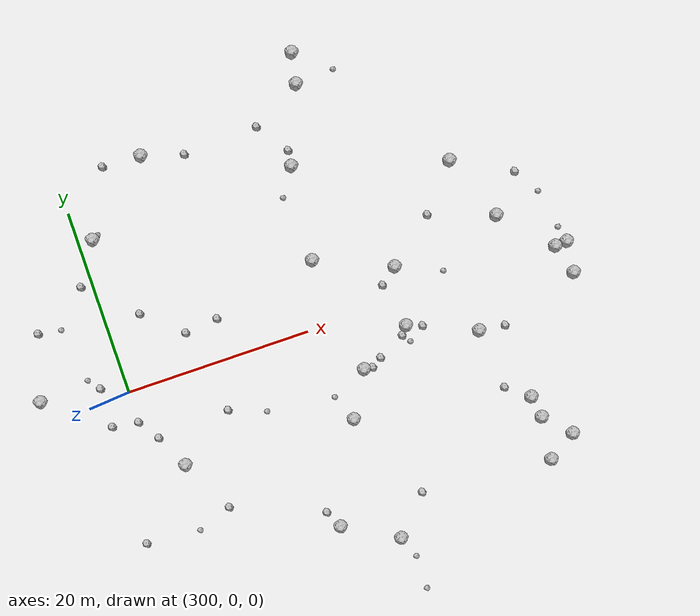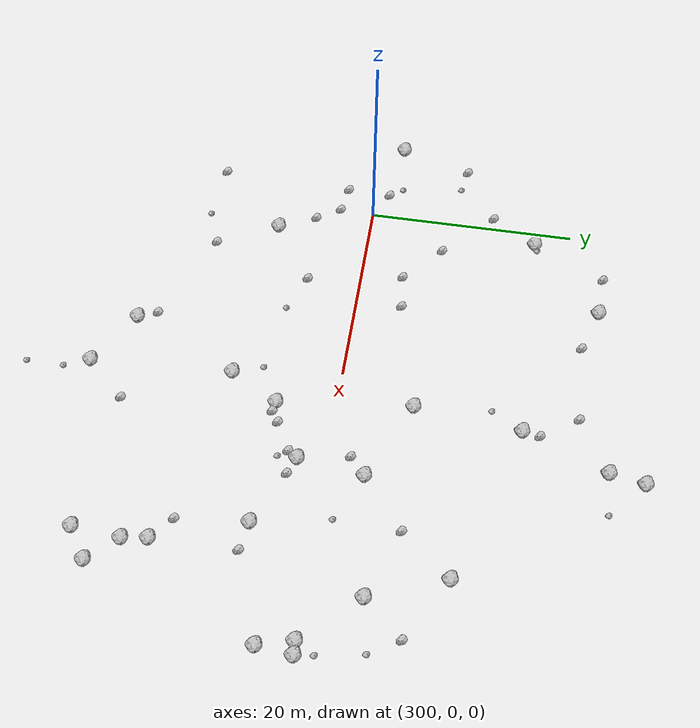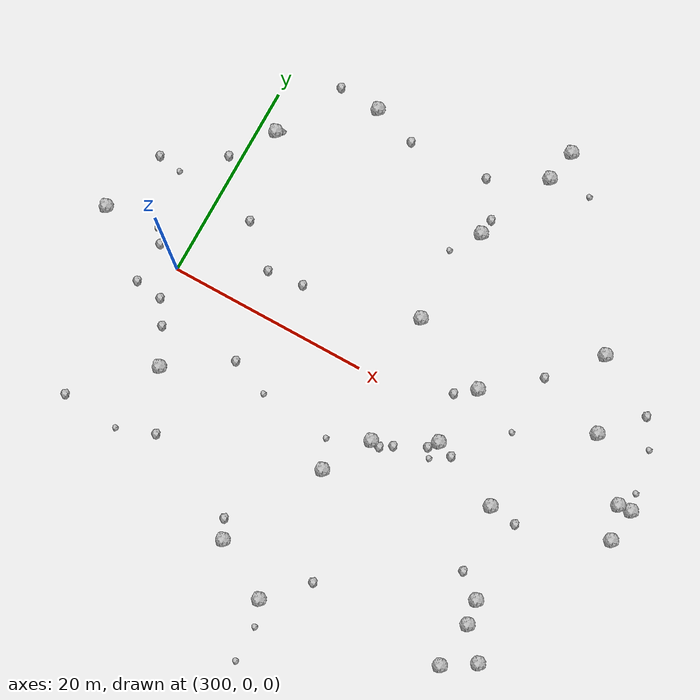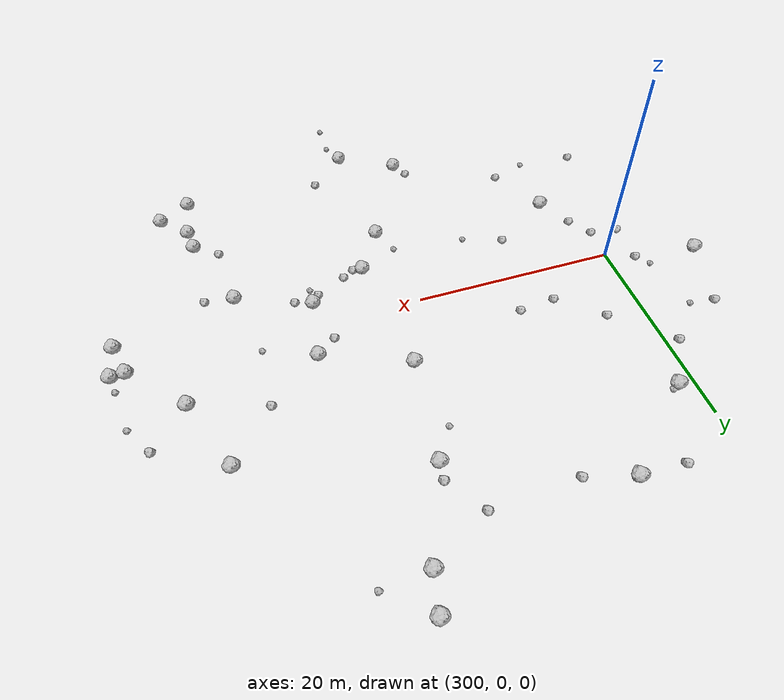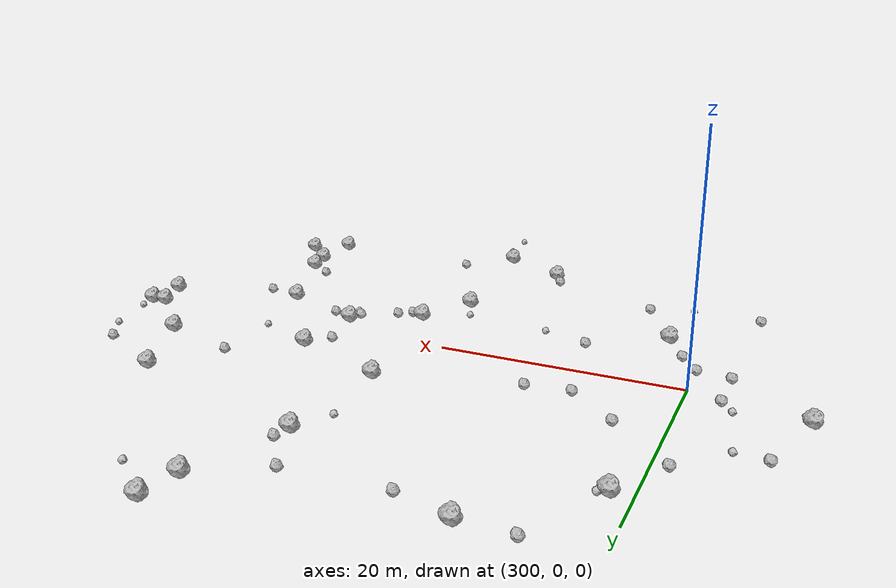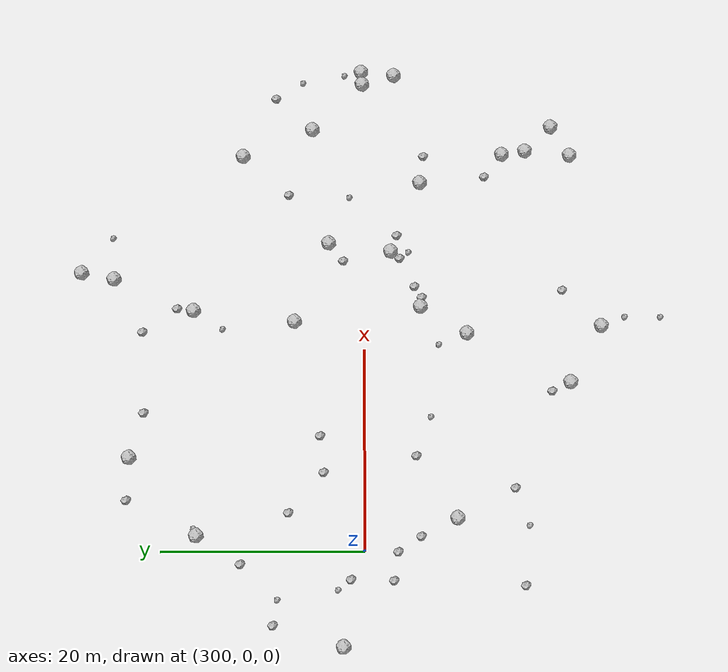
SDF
<sdf version="1.6">
 <world name="default">
  <include><uri>model://sun</uri></include>
  <model name="rock1_8_3">
   <include><uri>model://rock1</uri><pose>340.1501739881816 -13.98236713190692 0.5 0 0 0</pose></include>
  </model>
  <model name="rock1_8_4">
   <include><uri>model://rock1</uri><pose>339.9886641386641 12.375964743586145 0.5 0 0 0</pose></include>
  </model>
  <model name="rock1_8_5">
   <include><uri>model://rock1</uri><pose>327.8878630908823 28.47914457384445 0.5 0 0 0</pose></include>
  </model>
  <model name="rock1_8_6">
   <include><uri>model://rock1</uri><pose>321.6742070656729 -10.222153352746307 0.5 0 0 0</pose></include>
  </model>
  <model name="rock1_8_7">
   <include><uri>model://rock1</uri><pose>337.19164458584515 -5.605565318573763 0.5 0 0 0</pose></include>
  </model>
  <model name="rock1_8_8">
   <include><uri>model://rock1</uri><pose>309.307935475694 23.270002437467554 0.5 0 0 0</pose></include>
  </model>
  <model name="rock1_8_9">
   <include><uri>model://rock1</uri><pose>343.0570575062897 -19.018506244835876 0.5 0 0 0</pose></include>
  </model>
  <model name="rock1_8_10">
   <include><uri>model://rock1</uri><pose>340.0421657672767 -20.8900542605129 0.5 0 0 0</pose></include>
  </model>
  <model name="rock1_8_11">
   <include><uri>model://rock1</uri><pose>327.24720257360724 25.193733480616345 0.5 0 0 0</pose></include>
  </model>
  <model name="rock1_8_12">
   <include><uri>model://rock1</uri><pose>324.00304766107433 17.158781820987734 0.5 0 0 0</pose></include>
  </model>
  <model name="rock1_8_13">
   <include><uri>model://rock1</uri><pose>348.95496054516843 0.3462921478849985 0.5 0 0 0</pose></include>
  </model>
  <model name="rock1_8_14">
   <include><uri>model://rock1</uri><pose>347.6582028437184 0.25508949563452177 0.5 0 0 0</pose></include>
  </model>
  <model name="rock1_8_15">
   <include><uri>model://rock1</uri><pose>322.88510414056447 7.036547494436867 0.5 0 0 0</pose></include>
  </model>
  <model name="rock1_8_16">
   <include><uri>model://rock1</uri><pose>340.5078562063041 -16.343753468100644 0.5 0 0 0</pose></include>
  </model>
  <model name="rock1_8_17">
   <include><uri>model://rock1</uri><pose>290.9845206408303 2.0584216852707016 0.5 0 0 0</pose></include>
  </model>
  <model name="rock1_8_18">
   <include><uri>model://rock1</uri><pose>348.59294323858853 -2.9950495976990723 0.5 0 0 0</pose></include>
  </model>
  <model name="rock1_8_19">
   <include><uri>model://rock1</uri><pose>303.32155666235053 -9.10639064488483 0.5 0 0 0</pose></include>
  </model>
  <model name="rock1_8_20">
   <include><uri>model://rock1</uri><pose>322.39317119896805 -23.671118769081914 0.5 0 0 0</pose></include>
  </model>
  <model name="rock1_8_21">
   <include><uri>model://rock1</uri><pose>316.7219860028981 -20.477909993283124 0.5 0 0 0</pose></include>
  </model>
  <model name="rock1_8_22">
   <include><uri>model://rock1</uri><pose>330.9185639582698 3.621822657410327 0.5 0 0 0</pose></include>
  </model>
  <model name="rock1_8_23">
   <include><uri>model://rock1</uri><pose>324.38690066730317 -5.587276445424681 0.5 0 0 0</pose></include>
  </model>
  <model name="rock1_8_24">
   <include><uri>model://rock1</uri><pose>330.05631937819095 -2.6238785964549223 0.5 0 0 0</pose></include>
  </model>
  <model name="rock1_8_25">
   <include><uri>model://rock1</uri><pose>342.8135181379113 5.324655751695808 0.5 0 0 0</pose></include>
  </model>
  <model name="rock1_8_26">
   <include><uri>model://rock1</uri><pose>301.65775610345054 16.502850906498814 0.5 0 0 0</pose></include>
  </model>
  <model name="rock2_8_0">
   <include><uri>model://rock2</uri><pose>335.913139098854 7.682858060470188 0.3 0 0 0</pose></include>
  </model>
  <model name="rock2_8_1">
   <include><uri>model://rock2</uri><pose>307.7650478951358 4.067089798918346 0.3 0 0 0</pose></include>
  </model>
  <model name="rock2_8_2">
   <include><uri>model://rock2</uri><pose>313.68056479240914 21.96565432293231 0.3 0 0 0</pose></include>
  </model>
  <model name="rock2_8_3">
   <include><uri>model://rock2</uri><pose>305.05806857122116 23.487716423386587 0.3 0 0 0</pose></include>
  </model>
  <model name="rock2_8_4">
   <include><uri>model://rock2</uri><pose>339.97087925154705 -5.9928165861999645 0.3 0 0 0</pose></include>
  </model>
  <model name="rock2_8_5">
   <include><uri>model://rock2</uri><pose>300.01836574596183 -3.273129151476894 0.3 0 0 0</pose></include>
  </model>
  <model name="rock2_8_6">
   <include><uri>model://rock2</uri><pose>301.51124195638755 -5.533644970103449 0.3 0 0 0</pose></include>
  </model>
  <model name="rock2_8_7">
   <include><uri>model://rock2</uri><pose>346.12307049910305 9.056688018093737 0.3 0 0 0</pose></include>
  </model>
  <model name="rock2_8_8">
   <include><uri>model://rock2</uri><pose>292.9708796641915 8.9553887411602 0.3 0 0 0</pose></include>
  </model>
  <model name="rock2_8_9">
   <include><uri>model://rock2</uri><pose>296.7448992072989 -15.679639173606441 0.3 0 0 0</pose></include>
  </model>
  <model name="rock2_8_10">
   <include><uri>model://rock2</uri><pose>324.1893721542481 18.829703560391195 0.3 0 0 0</pose></include>
  </model>
  <model name="rock2_8_11">
   <include><uri>model://rock2</uri><pose>321.81410899284606 22.26174862774849 0.3 0 0 0</pose></include>
  </model>
  <model name="rock2_8_12">
   <include><uri>model://rock2</uri><pose>309.38240194294923 -5.096138016125213 0.3 0 0 0</pose></include>
  </model>
  <model name="rock2_8_13">
   <include><uri>model://rock2</uri><pose>326.01478357075905 -19.868621993941222 0.3 0 0 0</pose></include>
  </model>
  <model name="rock2_8_14">
   <include><uri>model://rock2</uri><pose>337.7968857150289 -12.18020258308091 0.3 0 0 0</pose></include>
  </model>
  <model name="rock2_8_15">
   <include><uri>model://rock2</uri><pose>297.34211340672357 1.3613957010621682 0.3 0 0 0</pose></include>
  </model>
  <model name="rock2_8_16">
   <include><uri>model://rock2</uri><pose>297.24279686307193 -2.8529457929324593 0.3 0 0 0</pose></include>
  </model>
  <model name="rock2_8_17">
   <include><uri>model://rock2</uri><pose>329.3327712037224 -3.52343956191811 0.3 0 0 0</pose></include>
  </model>
  <model name="rock2_8_18">
   <include><uri>model://rock2</uri><pose>315.79727139360466 -18.659941068622224 0.3 0 0 0</pose></include>
  </model>
  <model name="rock2_8_19">
   <include><uri>model://rock2</uri><pose>331.6914253427918 -3.2442527084838666 0.3 0 0 0</pose></include>
  </model>
  <model name="rock2_8_20">
   <include><uri>model://rock2</uri><pose>298.83770895240485 12.188743953216616 0.3 0 0 0</pose></include>
  </model>
  <model name="rock2_8_21">
   <include><uri>model://rock2</uri><pose>325.3021301885186 -5.7280231799778 0.3 0 0 0</pose></include>
  </model>
  <model name="rock2_8_22">
   <include><uri>model://rock2</uri><pose>303.8131068677726 7.516659214847898 0.3 0 0 0</pose></include>
  </model>
  <model name="rock2_8_23">
   <include><uri>model://rock2</uri><pose>311.3731259565666 4.4311737113484355 0.3 0 0 0</pose></include>
  </model>
  <model name="rock2_8_24">
   <include><uri>model://rock2</uri><pose>306.2108385492185 -14.837455152783347 0.3 0 0 0</pose></include>
  </model>
  <model name="rock2_8_25">
   <include><uri>model://rock2</uri><pose>326.4229537615678 -5.011899956825744 0.3 0 0 0</pose></include>
  </model>
  <model name="rock2_8_26">
   <include><uri>model://rock2</uri><pose>329.0597758981157 2.158939375914521 0.3 0 0 0</pose></include>
  </model>
  <model name="rock3_8_0">
   <include><uri>model://rock3</uri><pose>302.52317460847814 -16.20541542575929 0.2 0 0 0</pose></include>
  </model>
  <model name="rock3_8_1">
   <include><uri>model://rock3</uri><pose>331.4322630378434 25.42605575993837 0.2 0 0 0</pose></include>
  </model>
  <model name="rock3_8_2">
   <include><uri>model://rock3</uri><pose>348.59607595332875 2.030756721256381 0.2 0 0 0</pose></include>
  </model>
  <model name="rock3_8_3">
   <include><uri>model://rock3</uri><pose>347.81171501966605 6.294432566011103 0.2 0 0 0</pose></include>
  </model>
  <model name="rock3_8_4">
   <include><uri>model://rock3</uri><pose>329.9438819750984 -4.440606775025348 0.2 0 0 0</pose></include>
  </model>
  <model name="rock3_8_5">
   <include><uri>model://rock3</uri><pose>320.48894237201597 -7.44374741104069 0.2 0 0 0</pose></include>
  </model>
  <model name="rock3_8_6">
   <include><uri>model://rock3</uri><pose>323.2323191678372 -29.689523034652257 0.2 0 0 0</pose></include>
  </model>
  <model name="rock3_8_7">
   <include><uri>model://rock3</uri><pose>296.31217817793 2.5888045991467834 0.2 0 0 0</pose></include>
  </model>
  <model name="rock3_8_8">
   <include><uri>model://rock3</uri><pose>295.37580339979127 8.520009515407857 0.2 0 0 0</pose></include>
  </model>
  <model name="rock3_8_9">
   <include><uri>model://rock3</uri><pose>302.25080943282177 16.823612923331773 0.2 0 0 0</pose></include>
  </model>
  <model name="rock3_8_10">
   <include><uri>model://rock3</uri><pose>322.0838319328887 14.23351810673671 0.2 0 0 0</pose></include>
  </model>
  <model name="rock3_8_11">
   <include><uri>model://rock3</uri><pose>335.6495632268715 1.5207765049428161 0.2 0 0 0</pose></include>
  </model>
  <model name="rock3_8_12">
   <include><uri>model://rock3</uri><pose>313.22980991055414 -6.59360311426429 0.2 0 0 0</pose></include>
  </model>
  <model name="rock3_8_13">
   <include><uri>model://rock3</uri><pose>323.2548038519181 -26.11534227042617 0.2 0 0 0</pose></include>
  </model>
 </world>
</sdf>
